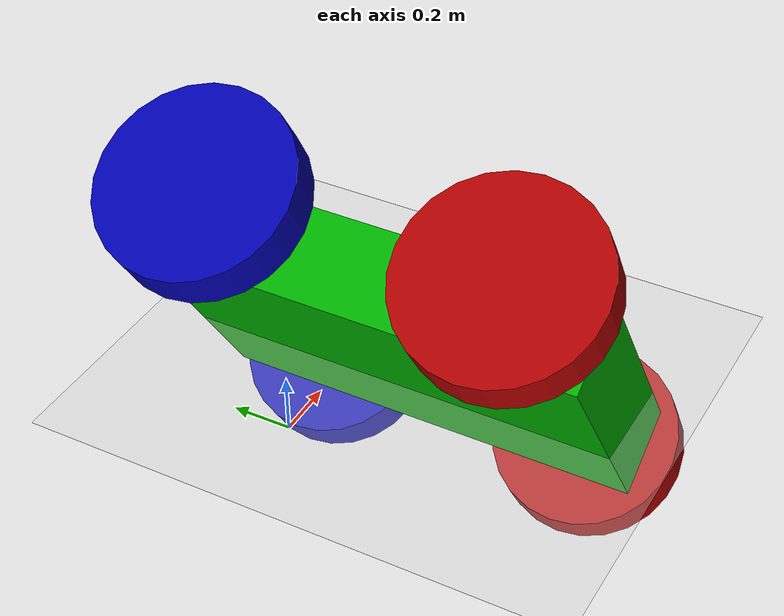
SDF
<sdf version='1.6'>
	<world name='default'>
		<light name='sun' type='directional'>
			<cast_shadows>1</cast_shadows>
			<pose frame=''>0 0 10 0 -0 0</pose>
			<diffuse>0.8 0.8 0.8 1</diffuse>
			<specular>0.1 0.1 0.1 1</specular>
			<attenuation>
				<range>1000</range>
				<constant>0.9</constant>
				<linear>0.01</linear>
				<quadratic>0.001</quadratic>
			</attenuation>
			<direction>-0.5 0.5 -1</direction>
		</light>
		<model name='ground_plane'>
			<static>1</static>
			<link name='link'>
				<collision name='collision'>
					<geometry>
						<plane>
							<normal>0 0 1</normal>
							<size>100 100</size>
						</plane>
					</geometry>
					<surface>
						<friction>
							<ode>
								<mu>100</mu>
								<mu2>50</mu2>
							</ode>
							<torsional>
								<ode/>
							</torsional>
						</friction>
						<contact>
							<ode/>
						</contact>
						<bounce/>
					</surface>
					<max_contacts>10</max_contacts>
				</collision>
				<visual name='visual'>
					<cast_shadows>0</cast_shadows>
					<geometry>
						<plane>
							<normal>0 0 1</normal>
							<size>100 100</size>
						</plane>
					</geometry>
					<material>
						<script>
							<uri>file://media/materials/scripts/gazebo.material</uri>
							<name>Gazebo/Grey</name>
						</script>
					</material>
				</visual>
				<self_collide>0</self_collide>
				<kinematic>0</kinematic>
				<gravity>1</gravity>
			</link>
		</model>
		<gravity>0 0 -9.8</gravity>
		<magnetic_field>6e-06 2.3e-05 -4.2e-05</magnetic_field>
		<atmosphere type='adiabatic'/>
		<physics name='default_physics' default='0' type='ode'>
			<max_step_size>0.001</max_step_size>
			<real_time_factor>1</real_time_factor>
			<real_time_update_rate>1000</real_time_update_rate>
		</physics>
		<scene>
			<ambient>0.4 0.4 0.4 1</ambient>
			<background>0.7 0.7 0.7 1</background>
			<shadows>1</shadows>
		</scene>
		<spherical_coordinates>
			<surface_model>EARTH_WGS84</surface_model>
			<latitude_deg>0</latitude_deg>
			<longitude_deg>0</longitude_deg>
			<elevation>0</elevation>
			<heading_deg>0</heading_deg>
		</spherical_coordinates>
		<model name='vehicle'>
			<link name='link_0'>
				<pose frame=''>0 0 0.3 0 -0 0</pose>
				<inertial>
					<mass>1</mass>
					<inertia>
						<ixx>0.166667</ixx>
						<ixy>0</ixy>
						<ixz>0</ixz>
						<iyy>0.166667</iyy>
						<iyz>0</iyz>
						<izz>0.166667</izz>
					</inertia>
					<pose frame=''>0 0 0 0 -0 0</pose>
				</inertial>
				<self_collide>0</self_collide>
				<kinematic>0</kinematic>
				<visual name='visual'>
					<pose frame=''>0 0 0 0 -0 0</pose>
					<geometry>
						<box>
							<size>1 1.5 0.3</size>
						</box>
					</geometry>
					<material>
						<lighting>1</lighting>
						<script>
							<uri>file://media/materials/scripts/gazebo.material</uri>
							<name>Gazebo/Grey</name>
						</script>
						<ambient>0 0.3 0 1</ambient>
						<diffuse>0 0.7 0 1</diffuse>
						<specular>0 0.01 0 1</specular>
						<emissive>0 0 0 1</emissive>
						<shader type='vertex'>
							<normal_map>__default__</normal_map>
						</shader>
					</material>
					<cast_shadows>1</cast_shadows>
					<transparency>0</transparency>
				</visual>
				<collision name='collision'>
					<laser_retro>0</laser_retro>
					<max_contacts>10</max_contacts>
					<pose frame=''>0 0 0 0 -0 0</pose>
					<geometry>
						<box>
							<size>1 1.5 0.3</size>
						</box>
					</geometry>
					<surface>
						<friction>
							<ode>
								<mu>10000</mu>
								<mu2>10000</mu2>
								<fdir1>0 0 0</fdir1>
								<slip1>0</slip1>
								<slip2>0</slip2>
							</ode>
							<torsional>
								<coefficient>1</coefficient>
								<patch_radius>0</patch_radius>
								<surface_radius>0</surface_radius>
								<use_patch_radius>1</use_patch_radius>
								<ode>
									<slip>0</slip>
								</ode>
							</torsional>
						</friction>
						<bounce>
							<restitution_coefficient>0</restitution_coefficient>
							<threshold>1e+06</threshold>
						</bounce>
						<contact>
							<collide_without_contact>0</collide_without_contact>
							<collide_without_contact_bitmask>1</collide_without_contact_bitmask>
							<collide_bitmask>1</collide_bitmask>
							<ode>
								<soft_cfm>0</soft_cfm>
								<soft_erp>0.2</soft_erp>
								<kp>1e+13</kp>
								<kd>1</kd>
								<max_vel>0.01</max_vel>
								<min_depth>0</min_depth>
							</ode>
							<bullet>
								<split_impulse>1</split_impulse>
								<split_impulse_penetration_threshold>-0.01</split_impulse_penetration_threshold>
								<soft_cfm>0</soft_cfm>
								<soft_erp>0.2</soft_erp>
								<kp>1e+13</kp>
								<kd>1</kd>
							</bullet>
						</contact>
					</surface>
				</collision>
				<gravity>1</gravity>
			</link>
			<link name='link_1'>
				<pose frame=''>-0.7 0.5 0.326 3.14159 1.57079 3.14159</pose>
				<inertial>
					<mass>0.0660132</mass>
					<inertia>
						<ixx>0.00187782</ixx>
						<ixy>0</ixy>
						<ixz>0</ixz>
						<iyy>0.00187782</iyy>
						<iyz>0</iyz>
						<izz>0.0034872</izz>
					</inertia>
					<pose frame=''>0 0 0 0 -0 0</pose>
				</inertial>
				<self_collide>0</self_collide>
				<kinematic>0</kinematic>
				<visual name='visual'>
					<pose frame=''>0 0 0 0 -0 0</pose>
					<geometry>
						<cylinder>
							<radius>0.32504</radius>
							<length>0.156176</length>
						</cylinder>
					</geometry>
					<material>
						<lighting>1</lighting>
						<script>
							<uri>file://media/materials/scripts/gazebo.material</uri>
							<name>Gazebo/Grey</name>
						</script>
						<ambient>0 0 0.3 1</ambient>
						<diffuse>0 0 0.7 1</diffuse>
						<specular>0 0 0.01 1</specular>
						<emissive>0 0 0 1</emissive>
						<shader type='vertex'>
							<normal_map>__default__</normal_map>
						</shader>
					</material>
					<cast_shadows>1</cast_shadows>
					<transparency>0</transparency>
				</visual>
				<collision name='collision'>
					<laser_retro>0</laser_retro>
					<max_contacts>10</max_contacts>
					<pose frame=''>0 0 0 0 -0 0</pose>
					<geometry>
						<cylinder>
							<radius>0.32504</radius>
							<length>0.156176</length>
						</cylinder>
					</geometry>
					<surface>
						<friction>
							<ode>
								<mu>10000</mu>
								<mu2>10000</mu2>
								<fdir1>0 0 0</fdir1>
								<slip1>0</slip1>
								<slip2>0</slip2>
							</ode>
							<torsional>
								<coefficient>1</coefficient>
								<patch_radius>0</patch_radius>
								<surface_radius>0</surface_radius>
								<use_patch_radius>1</use_patch_radius>
								<ode>
									<slip>0</slip>
								</ode>
							</torsional>
						</friction>
						<bounce>
							<restitution_coefficient>0</restitution_coefficient>
							<threshold>1e+06</threshold>
						</bounce>
						<contact>
							<collide_without_contact>0</collide_without_contact>
							<collide_without_contact_bitmask>1</collide_without_contact_bitmask>
							<collide_bitmask>1</collide_bitmask>
							<ode>
								<soft_cfm>0</soft_cfm>
								<soft_erp>0.2</soft_erp>
								<kp>1e+13</kp>
								<kd>1</kd>
								<max_vel>0.01</max_vel>
								<min_depth>0</min_depth>
							</ode>
							<bullet>
								<split_impulse>1</split_impulse>
								<split_impulse_penetration_threshold>-0.01</split_impulse_penetration_threshold>
								<soft_cfm>0</soft_cfm>
								<soft_erp>0.2</soft_erp>
								<kp>1e+13</kp>
								<kd>1</kd>
							</bullet>
						</contact>
					</surface>
				</collision>
				<gravity>1</gravity>
			</link>
			<link name='link_1_clone'>
				<pose frame=''>0.7 0.5 0.326 3.14159 1.57079 3.14159</pose>
				<inertial>
					<mass>0.0660132</mass>
					<inertia>
						<ixx>0.00187782</ixx>
						<ixy>0</ixy>
						<ixz>0</ixz>
						<iyy>0.00187782</iyy>
						<iyz>0</iyz>
						<izz>0.0034872</izz>
					</inertia>
					<pose frame=''>0 0 0 0 -0 0</pose>
				</inertial>
				<self_collide>0</self_collide>
				<kinematic>0</kinematic>
				<visual name='visual'>
					<pose frame=''>0 0 0 0 -0 0</pose>
					<geometry>
						<cylinder>
							<radius>0.32504</radius>
							<length>0.156176</length>
						</cylinder>
					</geometry>
					<material>
						<lighting>1</lighting>
						<script>
							<uri>file://media/materials/scripts/gazebo.material</uri>
							<name>Gazebo/Grey</name>
						</script>
						<ambient>0 0 0.3 1</ambient>
						<diffuse>0 0 0.7 1</diffuse>
						<specular>0 0 0.01 1</specular>
						<emissive>0 0 0 1</emissive>
						<shader type='vertex'>
							<normal_map>__default__</normal_map>
						</shader>
					</material>
					<cast_shadows>1</cast_shadows>
					<transparency>0</transparency>
				</visual>
				<collision name='collision'>
					<laser_retro>0</laser_retro>
					<max_contacts>10</max_contacts>
					<pose frame=''>0 0 0 0 -0 0</pose>
					<geometry>
						<cylinder>
							<radius>0.32504</radius>
							<length>0.156176</length>
						</cylinder>
					</geometry>
					<surface>
						<friction>
							<ode>
								<mu>10000</mu>
								<mu2>10000</mu2>
								<fdir1>0 0 0</fdir1>
								<slip1>0</slip1>
								<slip2>0</slip2>
							</ode>
							<torsional>
								<coefficient>1</coefficient>
								<patch_radius>0</patch_radius>
								<surface_radius>0</surface_radius>
								<use_patch_radius>1</use_patch_radius>
								<ode>
									<slip>0</slip>
								</ode>
							</torsional>
						</friction>
						<bounce>
							<restitution_coefficient>0</restitution_coefficient>
							<threshold>1e+06</threshold>
						</bounce>
						<contact>
							<collide_without_contact>0</collide_without_contact>
							<collide_without_contact_bitmask>1</collide_without_contact_bitmask>
							<collide_bitmask>1</collide_bitmask>
							<ode>
								<soft_cfm>0</soft_cfm>
								<soft_erp>0.2</soft_erp>
								<kp>1e+13</kp>
								<kd>1</kd>
								<max_vel>0.01</max_vel>
								<min_depth>0</min_depth>
							</ode>
							<bullet>
								<split_impulse>1</split_impulse>
								<split_impulse_penetration_threshold>-0.01</split_impulse_penetration_threshold>
								<soft_cfm>0</soft_cfm>
								<soft_erp>0.2</soft_erp>
								<kp>1e+13</kp>
								<kd>1</kd>
							</bullet>
						</contact>
					</surface>
				</collision>
				<gravity>1</gravity>
			</link>
			<link name='link_1_clone_0'>
				<pose frame=''>-0.7 -0.5 0.326 3.14159 1.57079 3.14159</pose>
				<inertial>
					<mass>0.0660132</mass>
					<inertia>
						<ixx>0.00187782</ixx>
						<ixy>0</ixy>
						<ixz>0</ixz>
						<iyy>0.00187782</iyy>
						<iyz>0</iyz>
						<izz>0.0034872</izz>
					</inertia>
					<pose frame=''>0 0 0 0 -0 0</pose>
				</inertial>
				<self_collide>0</self_collide>
				<kinematic>0</kinematic>
				<visual name='visual'>
					<pose frame=''>0 0 0 0 -0 0</pose>
					<geometry>
						<cylinder>
							<radius>0.32504</radius>
							<length>0.156176</length>
						</cylinder>
					</geometry>
					<material>
						<lighting>1</lighting>
						<script>
							<uri>file://media/materials/scripts/gazebo.material</uri>
							<name>Gazebo/Grey</name>
						</script>
						<ambient>0.3 0 0 1</ambient>
						<diffuse>0.7 0 0 1</diffuse>
						<specular>0.01 0 0 1</specular>
						<emissive>0 0 0 1</emissive>
						<shader type='vertex'>
							<normal_map>__default__</normal_map>
						</shader>
					</material>
					<cast_shadows>1</cast_shadows>
					<transparency>0</transparency>
				</visual>
				<collision name='collision'>
					<laser_retro>0</laser_retro>
					<max_contacts>10</max_contacts>
					<pose frame=''>0 0 0 0 -0 0</pose>
					<geometry>
						<cylinder>
							<radius>0.32504</radius>
							<length>0.156176</length>
						</cylinder>
					</geometry>
					<surface>
						<friction>
							<ode>
								<mu>10000</mu>
								<mu2>10000</mu2>
								<fdir1>0 0 0</fdir1>
								<slip1>0</slip1>
								<slip2>0</slip2>
							</ode>
							<torsional>
								<coefficient>1</coefficient>
								<patch_radius>0</patch_radius>
								<surface_radius>0</surface_radius>
								<use_patch_radius>1</use_patch_radius>
								<ode>
									<slip>0</slip>
								</ode>
							</torsional>
						</friction>
						<bounce>
							<restitution_coefficient>0</restitution_coefficient>
							<threshold>1e+06</threshold>
						</bounce>
						<contact>
							<collide_without_contact>0</collide_without_contact>
							<collide_without_contact_bitmask>1</collide_without_contact_bitmask>
							<collide_bitmask>1</collide_bitmask>
							<ode>
								<soft_cfm>0</soft_cfm>
								<soft_erp>0.2</soft_erp>
								<kp>1e+13</kp>
								<kd>1</kd>
								<max_vel>0.01</max_vel>
								<min_depth>0</min_depth>
							</ode>
							<bullet>
								<split_impulse>1</split_impulse>
								<split_impulse_penetration_threshold>-0.01</split_impulse_penetration_threshold>
								<soft_cfm>0</soft_cfm>
								<soft_erp>0.2</soft_erp>
								<kp>1e+13</kp>
								<kd>1</kd>
							</bullet>
						</contact>
					</surface>
				</collision>
				<gravity>1</gravity>
			</link>
			<link name='link_1_clone_1'>
				<pose frame=''>0.7 -0.5 0.326 3.14159 1.57079 3.14159</pose>
				<inertial>
					<mass>0.0660132</mass>
					<inertia>
						<ixx>0.00187782</ixx>
						<ixy>0</ixy>
						<ixz>0</ixz>
						<iyy>0.00187782</iyy>
						<iyz>0</iyz>
						<izz>0.0034872</izz>
					</inertia>
					<pose frame=''>0 0 0 0 -0 0</pose>
				</inertial>
				<self_collide>0</self_collide>
				<kinematic>0</kinematic>
				<visual name='visual'>
					<pose frame=''>0 0 0 0 -0 0</pose>
					<geometry>
						<cylinder>
							<radius>0.32504</radius>
							<length>0.156176</length>
						</cylinder>
					</geometry>
					<material>
						<lighting>1</lighting>
						<script>
							<uri>file://media/materials/scripts/gazebo.material</uri>
							<name>Gazebo/Grey</name>
						</script>
						<ambient>0.3 0 0 1</ambient>
						<diffuse>0.7 0 0 1</diffuse>
						<specular>0.01 0 0 1</specular>
						<emissive>0 0 0 1</emissive>
						<shader type='vertex'>
							<normal_map>__default__</normal_map>
						</shader>
					</material>
					<cast_shadows>1</cast_shadows>
					<transparency>0</transparency>
				</visual>
				<collision name='collision'>
					<laser_retro>0</laser_retro>
					<max_contacts>10</max_contacts>
					<pose frame=''>0 0 0 0 -0 0</pose>
					<geometry>
						<cylinder>
							<radius>0.32504</radius>
							<length>0.156176</length>
						</cylinder>
					</geometry>
					<surface>
						<friction>
							<ode>
								<mu>10000</mu>
								<mu2>10000</mu2>
								<fdir1>0 0 0</fdir1>
								<slip1>0</slip1>
								<slip2>0</slip2>
							</ode>
							<torsional>
								<coefficient>1</coefficient>
								<patch_radius>0</patch_radius>
								<surface_radius>0</surface_radius>
								<use_patch_radius>1</use_patch_radius>
								<ode>
									<slip>0</slip>
								</ode>
							</torsional>
						</friction>
						<bounce>
							<restitution_coefficient>0</restitution_coefficient>
							<threshold>1e+06</threshold>
						</bounce>
						<contact>
							<collide_without_contact>0</collide_without_contact>
							<collide_without_contact_bitmask>1</collide_without_contact_bitmask>
							<collide_bitmask>1</collide_bitmask>
							<ode>
								<soft_cfm>0</soft_cfm>
								<soft_erp>0.2</soft_erp>
								<kp>1e+13</kp>
								<kd>1</kd>
								<max_vel>0.01</max_vel>
								<min_depth>0</min_depth>
							</ode>
							<bullet>
								<split_impulse>1</split_impulse>
								<split_impulse_penetration_threshold>-0.01</split_impulse_penetration_threshold>
								<soft_cfm>0</soft_cfm>
								<soft_erp>0.2</soft_erp>
								<kp>1e+13</kp>
								<kd>1</kd>
							</bullet>
						</contact>
					</surface>
				</collision>
				<gravity>1</gravity>
			</link>
			<joint name='link_0_JOINT_0' type='revolute'>
				<parent>link_0</parent>
				<child>link_1</child>
				<pose frame=''>0 0 0 0 -0 0</pose>
				<axis>
					<xyz>0 0 1</xyz>
					<use_parent_model_frame>0</use_parent_model_frame>
					<limit>
						<lower>-1.79769e+308</lower>
						<upper>1.79769e+308</upper>
						<effort>-1</effort>
						<velocity>-1</velocity>
					</limit>
					<dynamics>
						<spring_reference>0</spring_reference>
						<spring_stiffness>0</spring_stiffness>
						<damping>0.1</damping>
					</dynamics>
				</axis>
				<physics>
					<ode>
						<cfm_damping>0</cfm_damping>
						<implicit_spring_damper>0</implicit_spring_damper>
						<limit>
							<cfm>0</cfm>
							<erp>0.2</erp>
						</limit>
						<suspension>
							<cfm>0</cfm>
							<erp>0.2</erp>
						</suspension>
					</ode>
				</physics>
			</joint>
			<joint name='link_0_JOINT_1' type='revolute'>
				<parent>link_0</parent>
				<child>link_1_clone</child>
				<pose frame=''>0 0 0 0 -0 0</pose>
				<axis>
					<xyz>0 0 1</xyz>
					<use_parent_model_frame>0</use_parent_model_frame>
					<limit>
						<lower>-1.79769e+308</lower>
						<upper>1.79769e+308</upper>
						<effort>-1</effort>
						<velocity>-1</velocity>
					</limit>
					<dynamics>
						<spring_reference>0</spring_reference>
						<spring_stiffness>0</spring_stiffness>
						<damping>0.1</damping>
					</dynamics>
				</axis>
				<physics>
					<ode>
						<cfm_damping>0</cfm_damping>
						<implicit_spring_damper>0</implicit_spring_damper>
						<limit>
							<cfm>0</cfm>
							<erp>0.2</erp>
						</limit>
						<suspension>
							<cfm>0</cfm>
							<erp>0.2</erp>
						</suspension>
					</ode>
				</physics>
			</joint>
			<joint name='link_0_JOINT_2' type='revolute'>
				<parent>link_0</parent>
				<child>link_1_clone_0</child>
				<pose frame=''>0 0 0 0 -0 0</pose>
				<axis>
					<xyz>0 0 1</xyz>
					<use_parent_model_frame>0</use_parent_model_frame>
					<limit>
						<lower>-1.79769e+308</lower>
						<upper>1.79769e+308</upper>
						<effort>-1</effort>
						<velocity>-1</velocity>
					</limit>
					<dynamics>
						<spring_reference>0</spring_reference>
						<spring_stiffness>0</spring_stiffness>
						<damping>0.1</damping>
					</dynamics>
				</axis>
				<physics>
					<ode>
						<cfm_damping>0</cfm_damping>
						<implicit_spring_damper>0</implicit_spring_damper>
						<limit>
							<cfm>0</cfm>
							<erp>0.2</erp>
						</limit>
						<suspension>
							<cfm>0</cfm>
							<erp>0.2</erp>
						</suspension>
					</ode>
				</physics>
			</joint>
			<joint name='link_0_JOINT_3' type='revolute'>
				<parent>link_0</parent>
				<child>link_1_clone_1</child>
				<pose frame=''>0 0 0 0 -0 0</pose>
				<axis>
					<xyz>0 0 1</xyz>
					<use_parent_model_frame>0</use_parent_model_frame>
					<limit>
						<lower>-1.79769e+308</lower>
						<upper>1.79769e+308</upper>
						<effort>-1</effort>
						<velocity>-1</velocity>
					</limit>
					<dynamics>
						<spring_reference>0</spring_reference>
						<spring_stiffness>0</spring_stiffness>
						<damping>0.1</damping>
					</dynamics>
				</axis>
				<physics>
					<ode>
						<cfm_damping>0</cfm_damping>
						<implicit_spring_damper>0</implicit_spring_damper>
						<limit>
							<cfm>0</cfm>
							<erp>0.2</erp>
						</limit>
						<suspension>
							<cfm>0</cfm>
							<erp>0.2</erp>
						</suspension>
					</ode>
				</physics>
			</joint>
			<joint name='link_0_JOINT_4' type='revolute'>
				<parent>link_0</parent>
				<child>link_1_clone_0</child>
				<pose frame=''>0 0 0 0 -0 0</pose>
				<axis>
					<xyz>-1 0 0</xyz>
					<use_parent_model_frame>0</use_parent_model_frame>
					<limit>
						<lower>-0.2</lower>
						<upper>0.2</upper>
						<effort>-1</effort>
						<velocity>-1</velocity>
					</limit>
					<dynamics>
						<spring_reference>0</spring_reference>
						<spring_stiffness>0</spring_stiffness>
						<damping>0.1</damping>
					</dynamics>
				</axis>
				<physics>
					<ode>
						<cfm_damping>0</cfm_damping>
						<implicit_spring_damper>0</implicit_spring_damper>
						<limit>
							<cfm>0</cfm>
							<erp>0.2</erp>
						</limit>
						<suspension>
							<cfm>0</cfm>
							<erp>0.2</erp>
						</suspension>
					</ode>
				</physics>
			</joint>
			<joint name='link_0_JOINT_5' type='revolute'>
				<parent>link_0</parent>
				<child>link_1_clone_1</child>
				<pose frame=''>0 0 0 0 -0 0</pose>
				<axis>
					<xyz>-1 0 0</xyz>
					<use_parent_model_frame>0</use_parent_model_frame>
					<limit>
						<lower>-0.2</lower>
						<upper>0.2</upper>
						<effort>-1</effort>
						<velocity>-1</velocity>
					</limit>
					<dynamics>
						<spring_reference>0</spring_reference>
						<spring_stiffness>0</spring_stiffness>
						<damping>0.1</damping>
					</dynamics>
				</axis>
				<physics>
					<ode>
						<cfm_damping>0</cfm_damping>
						<implicit_spring_damper>0</implicit_spring_damper>
						<limit>
							<cfm>0</cfm>
							<erp>0.2</erp>
						</limit>
						<suspension>
							<cfm>0</cfm>
							<erp>0.2</erp>
						</suspension>
					</ode>
				</physics>
			</joint>
			<static>0</static>
			<allow_auto_disable>1</allow_auto_disable>
			<pose frame=''>0.167235 -0.200576 0 0 1 0</pose>
			<plugin name='push' filename='libpush.so'/>
		</model>
		<gui fullscreen='0'>
			<camera name='user_camera'>
				<pose frame=''>4.82203 0.034203 1.45799 0 0.211642 3.01619</pose>
				<view_controller>orbit</view_controller>
				<projection_type>perspective</projection_type>
			</camera>
		</gui>
	</world>
</sdf>
